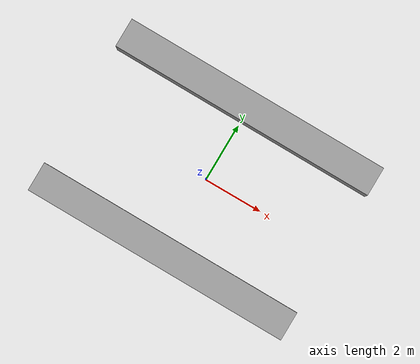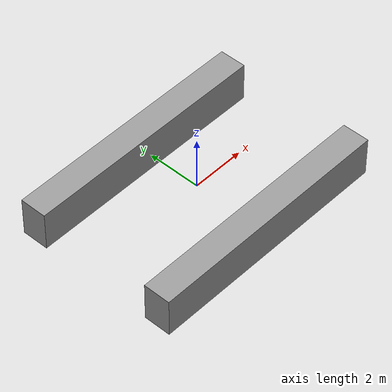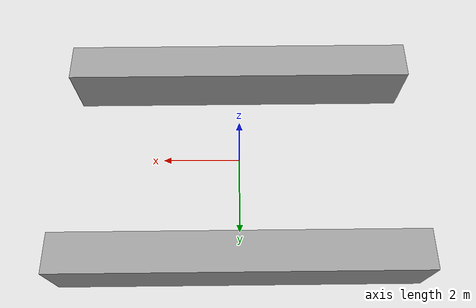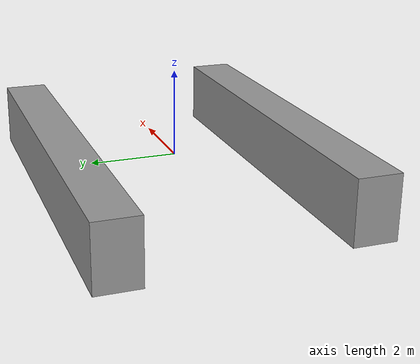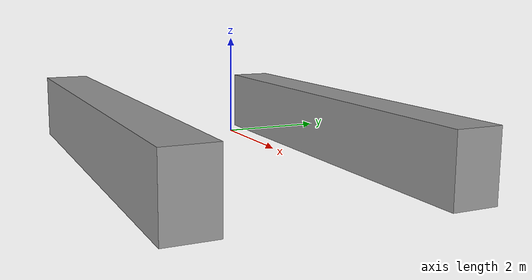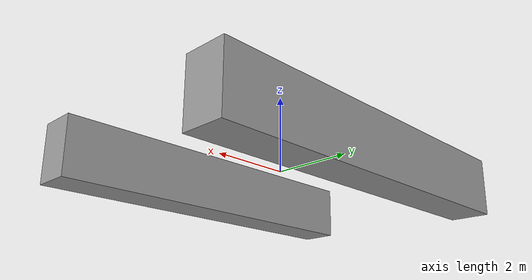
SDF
<?xml version='1.0'?>
<sdf version='1.7'>
  <model name='Untitled_machine'>
    <link name='link_0'>
      <inertial>
        <mass>13.6418</mass>
        <inertia>
          <ixx>3.61739</ixx>
          <ixy>0</ixy>
          <ixz>0</ixz>
          <iyy>99.4367</iyy>
          <iyz>0</iyz>
          <izz>98.093</izz>
        </inertia>
        <pose>0 0 0 0 -0 0</pose>
      </inertial>
      <pose>0.017385 2.65414 -0.076436 0 -0 0</pose>
      <visual name='visual'>
        <pose>0 0 0 0 -0 0</pose>
        <geometry>
          <box>
            <size>9.23513 1 1.47717</size>
          </box>
        </geometry>
        <material>
          <lighting>1</lighting>
          <script>
            <uri>file://media/materials/scripts/gazebo.material</uri>
            <name>Gazebo/Grey</name>
          </script>
          <shader type='pixel'/>
        </material>
        <transparency>0</transparency>
        <cast_shadows>1</cast_shadows>
      </visual>
      <collision name='collision'>
        <laser_retro>0</laser_retro>
        <max_contacts>10</max_contacts>
        <pose>0 0 0 0 -0 0</pose>
        <geometry>
          <box>
            <size>9.23513 1 1.47717</size>
          </box>
        </geometry>
        <surface>
          <friction>
            <ode>
              <mu>1</mu>
              <mu2>1</mu2>
              <fdir1>0 0 0</fdir1>
              <slip1>0</slip1>
              <slip2>0</slip2>
            </ode>
            <torsional>
              <coefficient>1</coefficient>
              <patch_radius>0</patch_radius>
              <surface_radius>0</surface_radius>
              <use_patch_radius>1</use_patch_radius>
              <ode>
                <slip>0</slip>
              </ode>
            </torsional>
          </friction>
          <bounce>
            <restitution_coefficient>0</restitution_coefficient>
            <threshold>1e+06</threshold>
          </bounce>
          <contact>
            <collide_without_contact>0</collide_without_contact>
            <collide_without_contact_bitmask>1</collide_without_contact_bitmask>
            <collide_bitmask>1</collide_bitmask>
            <ode>
              <soft_cfm>0</soft_cfm>
              <soft_erp>0.2</soft_erp>
              <kp>1e+13</kp>
              <kd>1</kd>
              <max_vel>0.01</max_vel>
              <min_depth>0</min_depth>
            </ode>
            <bullet>
              <split_impulse>1</split_impulse>
              <split_impulse_penetration_threshold>-0.01</split_impulse_penetration_threshold>
              <soft_cfm>0</soft_cfm>
              <soft_erp>0.2</soft_erp>
              <kp>1e+13</kp>
              <kd>1</kd>
            </bullet>
          </contact>
        </surface>
      </collision>
    </link>
    <link name='link_0_clone'>
      <inertial>
        <mass>13.6418</mass>
        <inertia>
          <ixx>3.61739</ixx>
          <ixy>0</ixy>
          <ixz>0</ixz>
          <iyy>99.4367</iyy>
          <iyz>0</iyz>
          <izz>98.093</izz>
        </inertia>
        <pose>0 0 0 0 -0 0</pose>
      </inertial>
      <pose>-0.017302 -2.65407 0.076436 0 -0 0</pose>
      <visual name='visual'>
        <pose>0 0 0 0 -0 0</pose>
        <geometry>
          <box>
            <size>9.23513 1 1.47717</size>
          </box>
        </geometry>
        <material>
          <lighting>1</lighting>
          <script>
            <uri>file://media/materials/scripts/gazebo.material</uri>
            <name>Gazebo/Grey</name>
          </script>
          <shader type='pixel'/>
        </material>
        <transparency>0</transparency>
        <cast_shadows>1</cast_shadows>
      </visual>
      <collision name='collision'>
        <laser_retro>0</laser_retro>
        <max_contacts>10</max_contacts>
        <pose>0 0 0 0 -0 0</pose>
        <geometry>
          <box>
            <size>9.23513 1 1.47717</size>
          </box>
        </geometry>
        <surface>
          <friction>
            <ode>
              <mu>1</mu>
              <mu2>1</mu2>
              <fdir1>0 0 0</fdir1>
              <slip1>0</slip1>
              <slip2>0</slip2>
            </ode>
            <torsional>
              <coefficient>1</coefficient>
              <patch_radius>0</patch_radius>
              <surface_radius>0</surface_radius>
              <use_patch_radius>1</use_patch_radius>
              <ode>
                <slip>0</slip>
              </ode>
            </torsional>
          </friction>
          <bounce>
            <restitution_coefficient>0</restitution_coefficient>
            <threshold>1e+06</threshold>
          </bounce>
          <contact>
            <collide_without_contact>0</collide_without_contact>
            <collide_without_contact_bitmask>1</collide_without_contact_bitmask>
            <collide_bitmask>1</collide_bitmask>
            <ode>
              <soft_cfm>0</soft_cfm>
              <soft_erp>0.2</soft_erp>
              <kp>1e+13</kp>
              <kd>1</kd>
              <max_vel>0.01</max_vel>
              <min_depth>0</min_depth>
            </ode>
            <bullet>
              <split_impulse>1</split_impulse>
              <split_impulse_penetration_threshold>-0.01</split_impulse_penetration_threshold>
              <soft_cfm>0</soft_cfm>
              <soft_erp>0.2</soft_erp>
              <kp>1e+13</kp>
              <kd>1</kd>
            </bullet>
          </contact>
        </surface>
      </collision>
    </link>
    <static>0</static>
    <allow_auto_disable>1</allow_auto_disable>
  </model>
</sdf>
